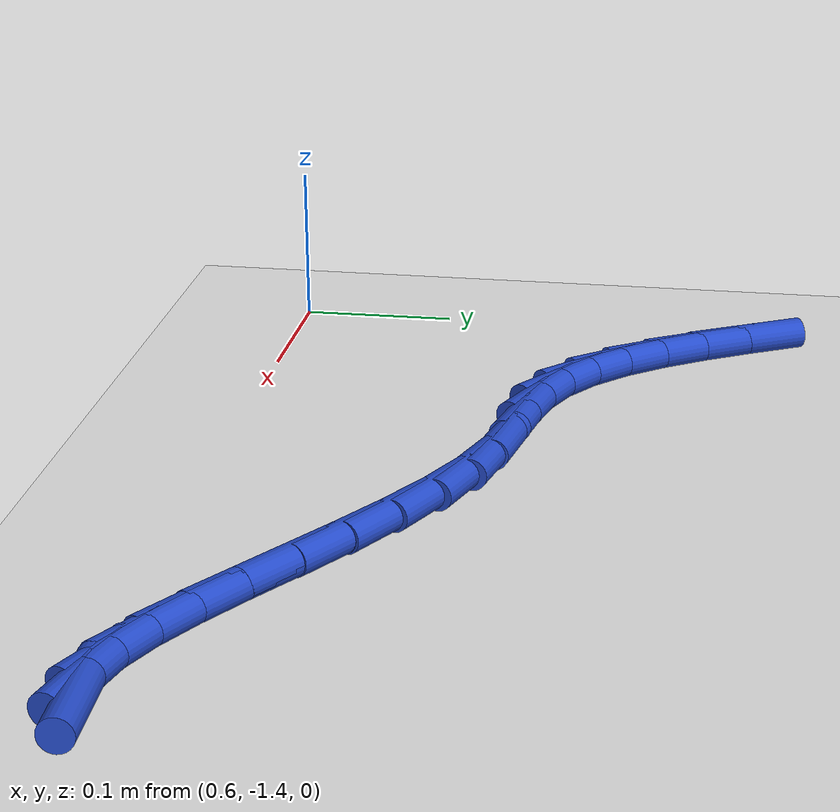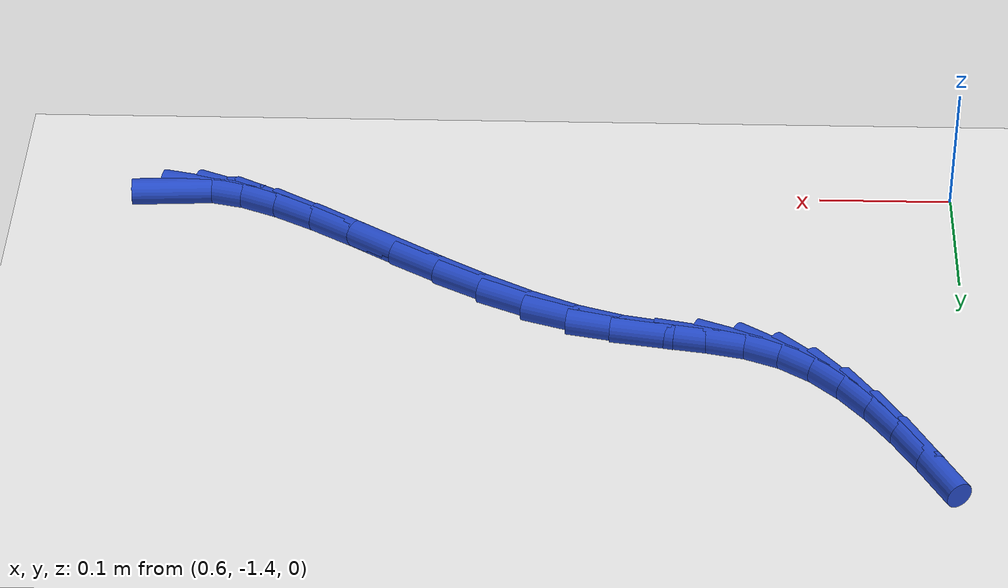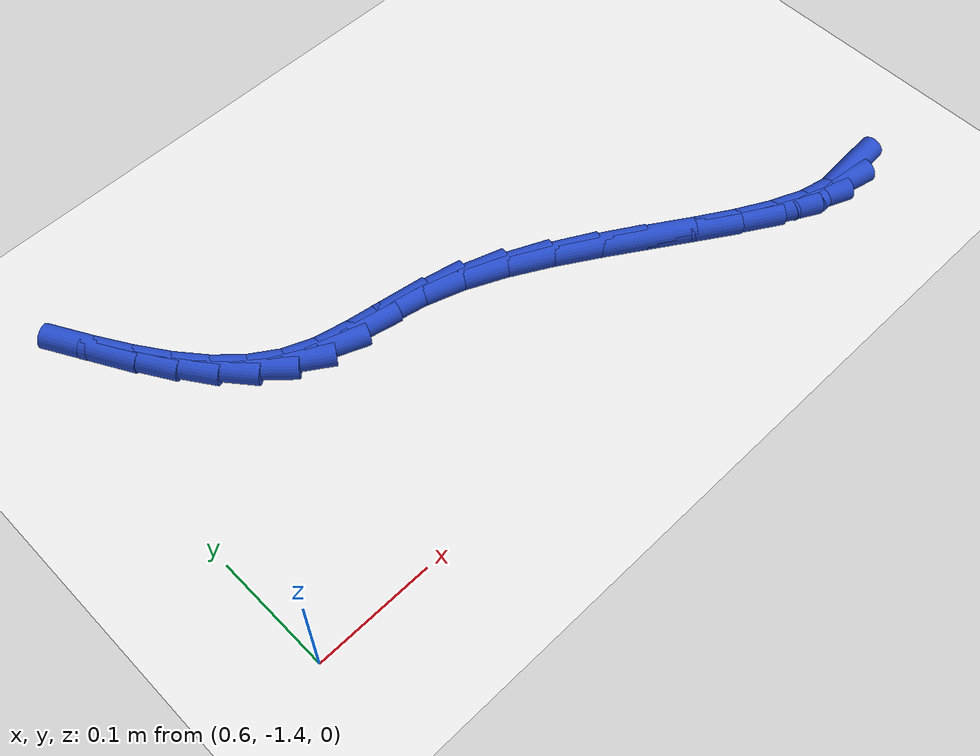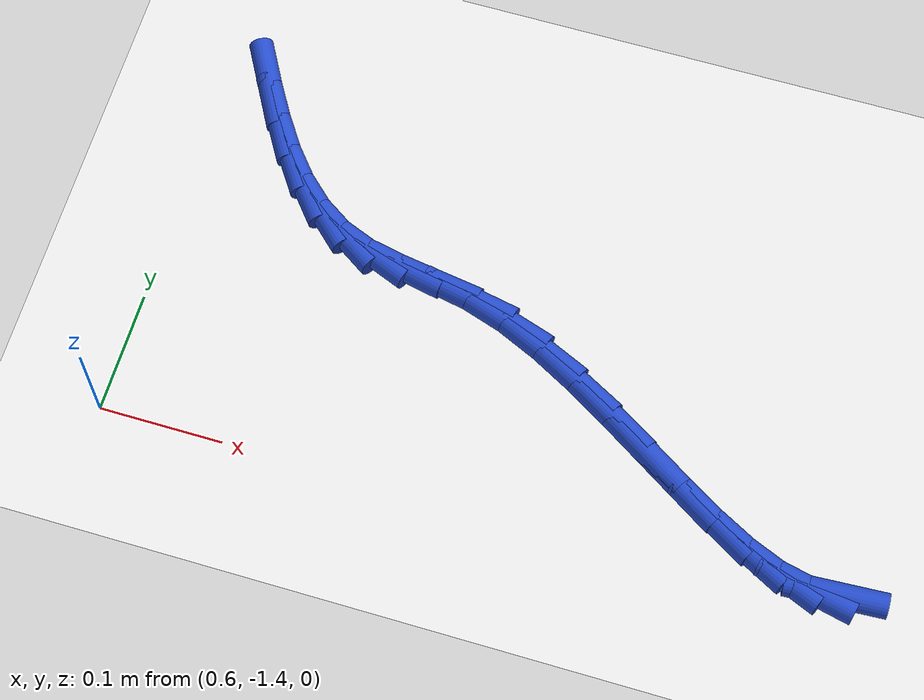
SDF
<sdf version="1.6">
 <world name="default">
  <model name="ground_plane">
   <static>1</static>
   <link name="link">
    <collision name="collision">
     <geometry><plane><normal>0 0 1</normal><size>100 100</size></plane></geometry>
     <surface><friction><ode><mu>100</mu><mu2>50</mu2></ode></friction></surface>
    </collision>
    <visual name="visual">
     <cast_shadows>0</cast_shadows>
     <geometry><plane><normal>0 0 1</normal><size>100 100</size></plane></geometry>
     <material>
      <script><uri>file://media/materials/scripts/gazebo.material</uri><name>Gazebo/WhiteGlow</name></script>
     </material>
    </visual>
   </link>
  </model>
  <model name="line">
   <link name="link_188">
    <pose>1.18564187476682 -1.3881081885804083 0.01 0 1.57 0.0540863573996916</pose>
    <collision name="collision">
     <geometry><cylinder><radius>0.01</radius><length>0.08</length></cylinder></geometry>
    </collision>
    <visual name="visual">
     <material>
      <script><name>Gazebo/Blue</name><uri>file://media/materials/scripts/gazebo.material</uri></script>
     </material>
     <geometry><cylinder><radius>0.01</radius><length>0.08</length></cylinder></geometry>
    </visual>
   </link>
   <link name="link_189">
    <pose>1.1638277542636253 -1.3892891867276556 0.01 0 1.57 -0.22578756472379527</pose>
    <collision name="collision">
     <geometry><cylinder><radius>0.01</radius><length>0.08</length></cylinder></geometry>
    </collision>
    <visual name="visual">
     <material>
      <script><name>Gazebo/Blue</name><uri>file://media/materials/scripts/gazebo.material</uri></script>
     </material>
     <geometry><cylinder><radius>0.01</radius><length>0.08</length></cylinder></geometry>
    </visual>
   </link>
   <link name="link_190">
    <pose>1.1391229802308092 -1.3836143929069868 0.01 0 1.57 -0.3928365020714547</pose>
    <collision name="collision">
     <geometry><cylinder><radius>0.01</radius><length>0.08</length></cylinder></geometry>
    </collision>
    <visual name="visual">
     <material>
      <script><name>Gazebo/Blue</name><uri>file://media/materials/scripts/gazebo.material</uri></script>
     </material>
     <geometry><cylinder><radius>0.01</radius><length>0.08</length></cylinder></geometry>
    </visual>
   </link>
   <link name="link_191">
    <pose>1.1119177459845242 -1.3723412356774902 0.01 0 1.57 -0.4894036548534584</pose>
    <collision name="collision">
     <geometry><cylinder><radius>0.01</radius><length>0.08</length></cylinder></geometry>
    </collision>
    <visual name="visual">
     <material>
      <script><name>Gazebo/Blue</name><uri>file://media/materials/scripts/gazebo.material</uri></script>
     </material>
     <geometry><cylinder><radius>0.01</radius><length>0.08</length></cylinder></geometry>
    </visual>
   </link>
   <link name="link_192">
    <pose>1.0826022448409234 -1.3567271435982542 0.01 0 1.57 -0.5422241391422963</pose>
    <collision name="collision">
     <geometry><cylinder><radius>0.01</radius><length>0.08</length></cylinder></geometry>
    </collision>
    <visual name="visual">
     <material>
      <script><name>Gazebo/Blue</name><uri>file://media/materials/scripts/gazebo.material</uri></script>
     </material>
     <geometry><cylinder><radius>0.01</radius><length>0.08</length></cylinder></geometry>
    </visual>
   </link>
   <link name="link_193">
    <pose>1.0515666701161592 -1.338029545228367 0.01 0 1.57 -0.5651327198156899</pose>
    <collision name="collision">
     <geometry><cylinder><radius>0.01</radius><length>0.08</length></cylinder></geometry>
    </collision>
    <visual name="visual">
     <material>
      <script><name>Gazebo/Blue</name><uri>file://media/materials/scripts/gazebo.material</uri></script>
     </material>
     <geometry><cylinder><radius>0.01</radius><length>0.08</length></cylinder></geometry>
    </visual>
   </link>
   <link name="link_194">
    <pose>1.019201215126384 -1.3175058691269166 0.01 0 1.57 -0.5645494362083922</pose>
    <collision name="collision">
     <geometry><cylinder><radius>0.01</radius><length>0.08</length></cylinder></geometry>
    </collision>
    <visual name="visual">
     <material>
      <script><name>Gazebo/Blue</name><uri>file://media/materials/scripts/gazebo.material</uri></script>
     </material>
     <geometry><cylinder><radius>0.01</radius><length>0.08</length></cylinder></geometry>
    </visual>
   </link>
   <link name="link_195">
    <pose>0.9858960731877517 -1.2964135438529913 0.01 0 1.57 -0.5423884981155852</pose>
    <collision name="collision">
     <geometry><cylinder><radius>0.01</radius><length>0.08</length></cylinder></geometry>
    </collision>
    <visual name="visual">
     <material>
      <script><name>Gazebo/Blue</name><uri>file://media/materials/scripts/gazebo.material</uri></script>
     </material>
     <geometry><cylinder><radius>0.01</radius><length>0.08</length></cylinder></geometry>
    </visual>
   </link>
   <link name="link_196">
    <pose>0.952041437616413 -1.2760099979656787 0.01 0 1.57 -0.49717534174836747</pose>
    <collision name="collision">
     <geometry><cylinder><radius>0.01</radius><length>0.08</length></cylinder></geometry>
    </collision>
    <visual name="visual">
     <material>
      <script><name>Gazebo/Blue</name><uri>file://media/materials/scripts/gazebo.material</uri></script>
     </material>
     <geometry><cylinder><radius>0.01</radius><length>0.08</length></cylinder></geometry>
    </visual>
   </link>
   <link name="link_197">
    <pose>0.9180275017285219 -1.2575526600240678 0.01 0 1.57 -0.4241167953840371</pose>
    <collision name="collision">
     <geometry><cylinder><radius>0.01</radius><length>0.08</length></cylinder></geometry>
    </collision>
    <visual name="visual">
     <material>
      <script><name>Gazebo/Blue</name><uri>file://media/materials/scripts/gazebo.material</uri></script>
     </material>
     <geometry><cylinder><radius>0.01</radius><length>0.08</length></cylinder></geometry>
    </visual>
   </link>
   <link name="link_198">
    <pose>0.8842444588402306 -1.2422989585872464 0.01 0 1.57 -0.3149264345681939</pose>
    <collision name="collision">
     <geometry><cylinder><radius>0.01</radius><length>0.08</length></cylinder></geometry>
    </collision>
    <visual name="visual">
     <material>
      <script><name>Gazebo/Blue</name><uri>file://media/materials/scripts/gazebo.material</uri></script>
     </material>
     <geometry><cylinder><radius>0.01</radius><length>0.08</length></cylinder></geometry>
    </visual>
   </link>
   <link name="link_199">
    <pose>0.8510828765271373 -1.231495973942524 0.01 0 1.57 -0.1976655191630673</pose>
    <collision name="collision">
     <geometry><cylinder><radius>0.01</radius><length>0.08</length></cylinder></geometry>
    </collision>
    <visual name="visual">
     <material>
      <script><name>Gazebo/Blue</name><uri>file://media/materials/scripts/gazebo.material</uri></script>
     </material>
     <geometry><cylinder><radius>0.01</radius><length>0.08</length></cylinder></geometry>
    </visual>
   </link>
   <link name="link_200">
    <pose>0.8189812123750636 -1.2250666278363118 0.01 0 1.57 -0.15426607172663942</pose>
    <collision name="collision">
     <geometry><cylinder><radius>0.01</radius><length>0.08</length></cylinder></geometry>
    </collision>
    <visual name="visual">
     <material>
      <script><name>Gazebo/Blue</name><uri>file://media/materials/scripts/gazebo.material</uri></script>
     </material>
     <geometry><cylinder><radius>0.01</radius><length>0.08</length></cylinder></geometry>
    </visual>
   </link>
   <link name="link_201">
    <pose>0.7884723683818833 -1.220322454498574 0.01 0 1.57 -0.2101961578384713</pose>
    <collision name="collision">
     <geometry><cylinder><radius>0.01</radius><length>0.08</length></cylinder></geometry>
    </collision>
    <visual name="visual">
     <material>
      <script><name>Gazebo/Blue</name><uri>file://media/materials/scripts/gazebo.material</uri></script>
     </material>
     <geometry><cylinder><radius>0.01</radius><length>0.08</length></cylinder></geometry>
    </visual>
   </link>
   <link name="link_202">
    <pose>0.7601003005809596 -1.2142693441338395 0.01 0 1.57 -0.3782310867211512</pose>
    <collision name="collision">
     <geometry><cylinder><radius>0.01</radius><length>0.08</length></cylinder></geometry>
    </collision>
    <visual name="visual">
     <material>
      <script><name>Gazebo/Blue</name><uri>file://media/materials/scripts/gazebo.material</uri></script>
     </material>
     <geometry><cylinder><radius>0.01</radius><length>0.08</length></cylinder></geometry>
    </visual>
   </link>
   <link name="link_203">
    <pose>0.7343742215479694 -1.204046750685594 0.01 0 1.57 -0.5832686300513903</pose>
    <collision name="collision">
     <geometry><cylinder><radius>0.01</radius><length>0.08</length></cylinder></geometry>
    </collision>
    <visual name="visual">
     <material>
      <script><name>Gazebo/Blue</name><uri>file://media/materials/scripts/gazebo.material</uri></script>
     </material>
     <geometry><cylinder><radius>0.01</radius><length>0.08</length></cylinder></geometry>
    </visual>
   </link>
   <link name="link_204">
    <pose>0.7112795528735889 -1.1888077297090134 0.01 0 1.57 -0.7523015523734012</pose>
    <collision name="collision">
     <geometry><cylinder><radius>0.01</radius><length>0.08</length></cylinder></geometry>
    </collision>
    <visual name="visual">
     <material>
      <script><name>Gazebo/Blue</name><uri>file://media/materials/scripts/gazebo.material</uri></script>
     </material>
     <geometry><cylinder><radius>0.01</radius><length>0.08</length></cylinder></geometry>
    </visual>
   </link>
   <link name="link_205">
    <pose>0.6903964834297242 -1.169263166655145 0.01 0 1.57 -0.8798279674199726</pose>
    <collision name="collision">
     <geometry><cylinder><radius>0.01</radius><length>0.08</length></cylinder></geometry>
    </collision>
    <visual name="visual">
     <material>
      <script><name>Gazebo/Blue</name><uri>file://media/materials/scripts/gazebo.material</uri></script>
     </material>
     <geometry><cylinder><radius>0.01</radius><length>0.08</length></cylinder></geometry>
    </visual>
   </link>
   <link name="link_206">
    <pose>0.6712946608996484 -1.1461644703040488 0.01 0 1.57 -0.9699864403466868</pose>
    <collision name="collision">
     <geometry><cylinder><radius>0.01</radius><length>0.08</length></cylinder></geometry>
    </collision>
    <visual name="visual">
     <material>
      <script><name>Gazebo/Blue</name><uri>file://media/materials/scripts/gazebo.material</uri></script>
     </material>
     <geometry><cylinder><radius>0.01</radius><length>0.08</length></cylinder></geometry>
    </visual>
   </link>
   <link name="link_207">
    <pose>0.6535437329666355 -1.120263049435785 0.01 0 1.57 -1.0288330118494795</pose>
    <collision name="collision">
     <geometry><cylinder><radius>0.01</radius><length>0.08</length></cylinder></geometry>
    </collision>
    <visual name="visual">
     <material>
      <script><name>Gazebo/Blue</name><uri>file://media/materials/scripts/gazebo.material</uri></script>
     </material>
     <geometry><cylinder><radius>0.01</radius><length>0.08</length></cylinder></geometry>
    </visual>
   </link>
   <link name="link_208">
    <pose>0.6367133473139587 -1.0923103128304146 0.01 0 1.57 -1.0613830387385679</pose>
    <collision name="collision">
     <geometry><cylinder><radius>0.01</radius><length>0.08</length></cylinder></geometry>
    </collision>
    <visual name="visual">
     <material>
      <script><name>Gazebo/Blue</name><uri>file://media/materials/scripts/gazebo.material</uri></script>
     </material>
     <geometry><cylinder><radius>0.01</radius><length>0.08</length></cylinder></geometry>
    </visual>
   </link>
  </model>
 </world>
</sdf>
